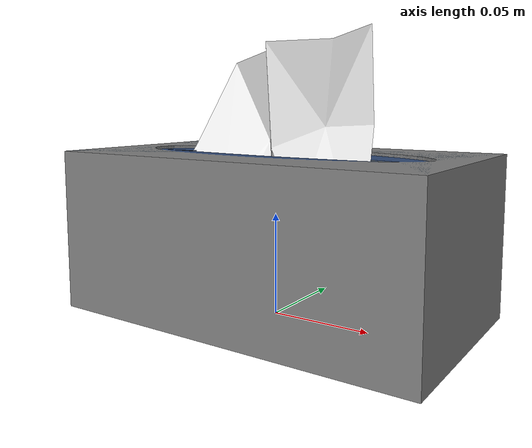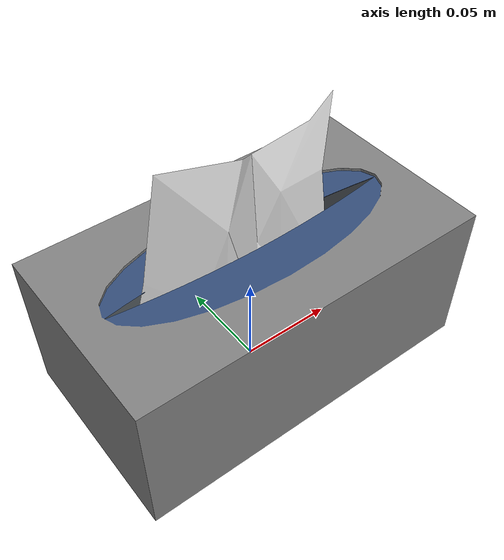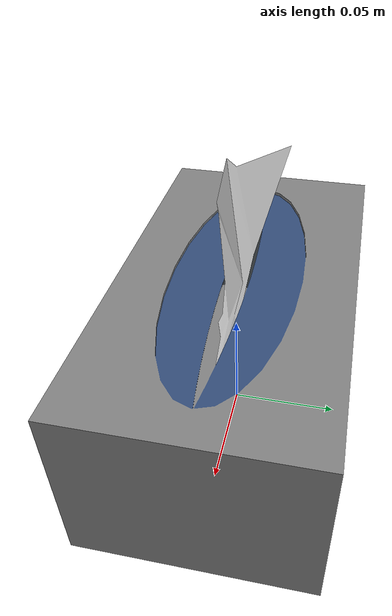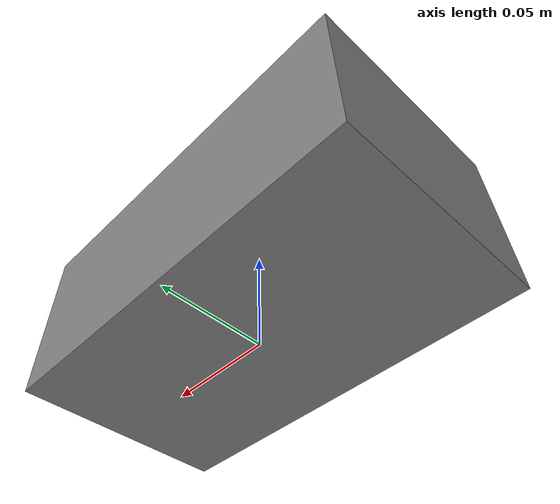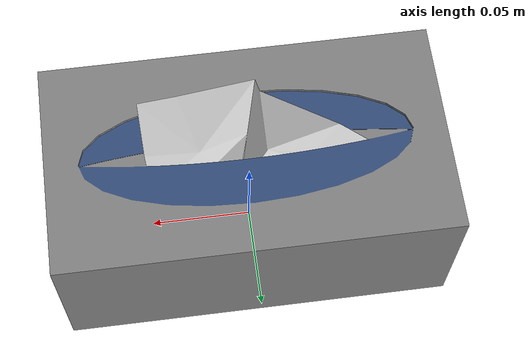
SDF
<?xml version='1.0'?>
<sdf version='1.6'>
  <model name='tissue_box_2'>
    <link name='link_11'>
      <visual name='visual'>
        <pose frame=''>0 0 0 0 -0 0</pose>
        <geometry>
          <mesh>
            <uri>model://tissue_box_2/meshes/paper.dae</uri>
            <scale>1 1 1</scale>
          </mesh>
        </geometry>
        <material>
          <lighting>1</lighting>
          <ambient>1 1 1 1</ambient>
          <diffuse>1 1 1 1</diffuse>
          <specular>0.01 0.01 0.01 1</specular>
          <emissive>0 0 0 1</emissive>
          <shader type='vertex'>
            <normal_map>__default__</normal_map>
          </shader>
        </material>
        <cast_shadows>1</cast_shadows>
        <transparency>0</transparency>
      </visual>
      <collision name='collision'>
        <laser_retro>0</laser_retro>
        <max_contacts>10</max_contacts>
        <pose frame=''>0 0 0 0 -0 0</pose>
        <geometry>
          <mesh>
            <uri>model://tissue_box_2/meshes/paper.dae</uri>
            <scale>1 1 1</scale>
          </mesh>
        </geometry>
       </collision>
    </link>
    <link name='link_9'>
      <visual name='visual'>
        <pose frame=''>0 0 0 0 -0 0</pose>
        <geometry>
          <mesh>
            <uri>model://tissue_box_2/meshes/box.dae</uri>
            <scale>1 1 1</scale>
          </mesh>
        </geometry>
       <material>
          <script>
            <uri>model://tissue_box_2/materials/scripts</uri>
            <uri>model://tissue_box_2/materials/textures</uri>
            <name>mat2</name>
          </script>
        </material>
        <cast_shadows>1</cast_shadows>
        <transparency>0</transparency>
      </visual>
      <collision name='collision'>
        <laser_retro>0</laser_retro>
        <max_contacts>10</max_contacts>
        <pose frame=''>0 0 0 0 -0 0</pose>
        <geometry>
          <mesh>
            <uri>model://tissue_box_2/meshes/box.dae</uri>
            <scale>1 1 1</scale>
          </mesh>
        </geometry>
       </collision>
    </link>
    <static>1</static>
    <allow_auto_disable>1</allow_auto_disable>
  </model>
</sdf>
